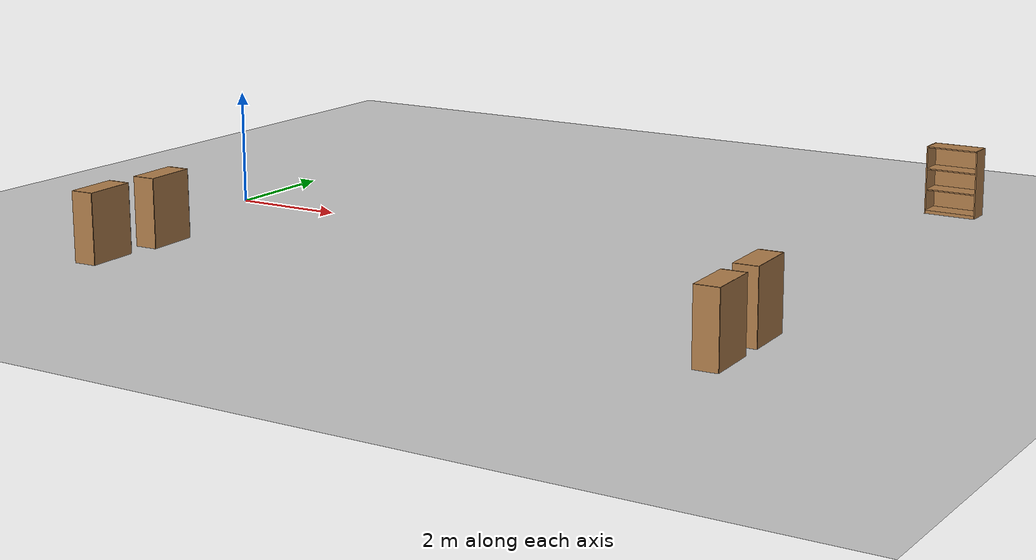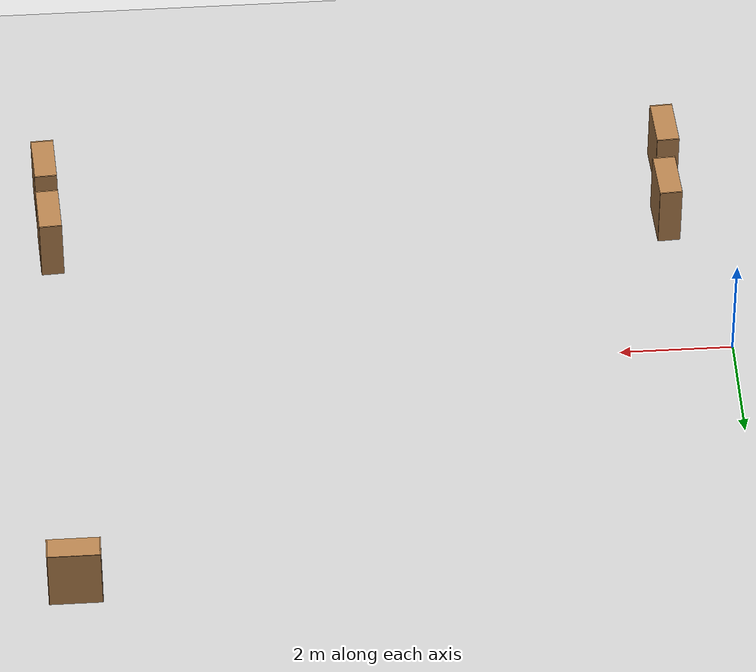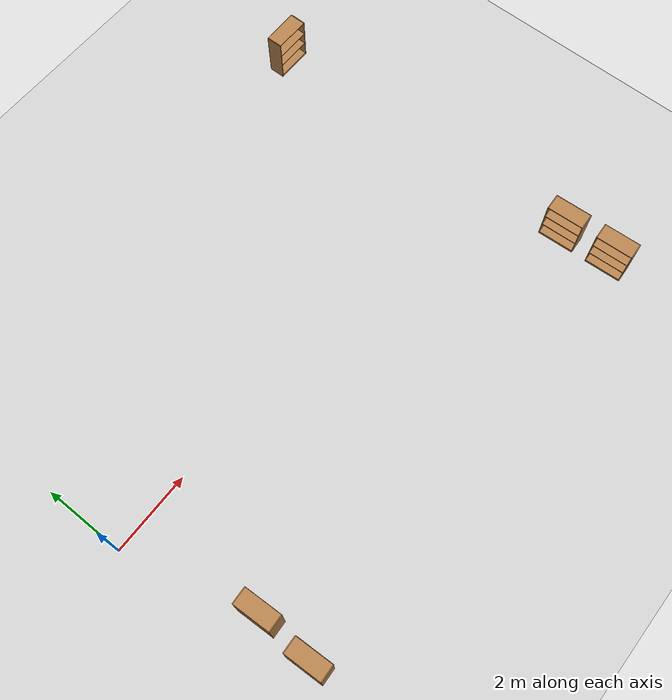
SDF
<sdf version="1.6">
 <world name="default">
  <model name="ground_plane">
   <static>1</static>
   <link name="link">
    <collision name="collision">
     <geometry><plane><normal>0 0 1</normal><size>100 100</size></plane></geometry>
     <surface><friction><ode><mu>100</mu><mu2>50</mu2></ode></friction></surface>
    </collision>
    <visual name="visual">
     <cast_shadows>0</cast_shadows>
     <geometry><plane><normal>0 0 1</normal><size>100 100</size></plane></geometry>
     <material>
      <script><uri>file://media/materials/scripts/gazebo.material</uri><name>Gazebo/Grey</name></script>
     </material>
    </visual>
   </link>
  </model>
  <model name="bookshelf">
   <static>1</static>
   <link name="link">
    <inertial><mass>1</mass></inertial>
    <collision name="back">
     <pose>0 0.005 0.6 0 -0 0</pose>
     <geometry><box><size>0.9 0.01 1.2</size></box></geometry>
    </collision>
    <visual name="visual1">
     <pose>0 0.005 0.6 0 -0 0</pose>
     <geometry><box><size>0.9 0.01 1.2</size></box></geometry>
     <material>
      <script><uri>file://media/materials/scripts/gazebo.material</uri><name>Gazebo/Wood</name></script>
     </material>
    </visual>
    <collision name="left_side">
     <pose>0.45 -0.195 0.6 0 -0 0</pose>
     <geometry><box><size>0.02 0.4 1.2</size></box></geometry>
    </collision>
    <visual name="visual2">
     <pose>0.45 -0.195 0.6 0 -0 0</pose>
     <geometry><box><size>0.02 0.4 1.2</size></box></geometry>
     <material>
      <script><uri>file://media/materials/scripts/gazebo.material</uri><name>Gazebo/Wood</name></script>
     </material>
    </visual>
    <collision name="right_side">
     <pose>-0.45 -0.195 0.6 0 -0 0</pose>
     <geometry><box><size>0.02 0.4 1.2</size></box></geometry>
    </collision>
    <visual name="visual3">
     <pose>-0.45 -0.195 0.6 0 -0 0</pose>
     <geometry><box><size>0.02 0.4 1.2</size></box></geometry>
     <material>
      <script><uri>file://media/materials/scripts/gazebo.material</uri><name>Gazebo/Wood</name></script>
     </material>
    </visual>
    <collision name="bottom">
     <pose>0 -0.195 0.03 0 -0 0</pose>
     <geometry><box><size>0.88 0.4 0.06</size></box></geometry>
    </collision>
    <visual name="visual4">
     <pose>0 -0.195 0.03 0 -0 0</pose>
     <geometry><box><size>0.88 0.4 0.06</size></box></geometry>
     <material>
      <script><uri>file://media/materials/scripts/gazebo.material</uri><name>Gazebo/Wood</name></script>
     </material>
    </visual>
    <collision name="top">
     <pose>0 -0.195 1.19 0 -0 0</pose>
     <geometry><box><size>0.88 0.4 0.02</size></box></geometry>
    </collision>
    <visual name="visual5">
     <pose>0 -0.195 1.19 0 -0 0</pose>
     <geometry><box><size>0.88 0.4 0.02</size></box></geometry>
     <material>
      <script><uri>file://media/materials/scripts/gazebo.material</uri><name>Gazebo/Wood</name></script>
     </material>
    </visual>
    <collision name="low_shelf">
     <pose>0 -0.195 0.43 0 -0 0</pose>
     <geometry><box><size>0.88 0.4 0.02</size></box></geometry>
    </collision>
    <visual name="visual6">
     <pose>0 -0.195 0.43 0 -0 0</pose>
     <geometry><box><size>0.88 0.4 0.02</size></box></geometry>
     <material>
      <script><uri>file://media/materials/scripts/gazebo.material</uri><name>Gazebo/Wood</name></script>
     </material>
    </visual>
    <collision name="high_shelf">
     <pose>0 -0.195 0.8 0 -0 0</pose>
     <geometry><box><size>0.88 0.4 0.02</size></box></geometry>
    </collision>
    <visual name="visual7">
     <pose>0 -0.195 0.8 0 -0 0</pose>
     <geometry><box><size>0.88 0.4 0.02</size></box></geometry>
     <material>
      <script><uri>file://media/materials/scripts/gazebo.material</uri><name>Gazebo/Wood</name></script>
     </material>
    </visual>
   </link>
   <pose>0.980106 -4.53001 0 0 0 -1.52246</pose>
  </model>
  <model name="bookshelf_clone">
   <static>1</static>
   <link name="link">
    <inertial><mass>1</mass></inertial>
    <collision name="back">
     <pose>0 0.005 0.6 0 -0 0</pose>
     <geometry><box><size>0.9 0.01 1.2</size></box></geometry>
    </collision>
    <visual name="visual1">
     <pose>0 0.005 0.6 0 -0 0</pose>
     <geometry><box><size>0.9 0.01 1.2</size></box></geometry>
     <material>
      <script><uri>file://media/materials/scripts/gazebo.material</uri><name>Gazebo/Wood</name></script>
     </material>
    </visual>
    <collision name="left_side">
     <pose>0.45 -0.195 0.6 0 -0 0</pose>
     <geometry><box><size>0.02 0.4 1.2</size></box></geometry>
    </collision>
    <visual name="visual2">
     <pose>0.45 -0.195 0.6 0 -0 0</pose>
     <geometry><box><size>0.02 0.4 1.2</size></box></geometry>
     <material>
      <script><uri>file://media/materials/scripts/gazebo.material</uri><name>Gazebo/Wood</name></script>
     </material>
    </visual>
    <collision name="right_side">
     <pose>-0.45 -0.195 0.6 0 -0 0</pose>
     <geometry><box><size>0.02 0.4 1.2</size></box></geometry>
    </collision>
    <visual name="visual3">
     <pose>-0.45 -0.195 0.6 0 -0 0</pose>
     <geometry><box><size>0.02 0.4 1.2</size></box></geometry>
     <material>
      <script><uri>file://media/materials/scripts/gazebo.material</uri><name>Gazebo/Wood</name></script>
     </material>
    </visual>
    <collision name="bottom">
     <pose>0 -0.195 0.03 0 -0 0</pose>
     <geometry><box><size>0.88 0.4 0.06</size></box></geometry>
    </collision>
    <visual name="visual4">
     <pose>0 -0.195 0.03 0 -0 0</pose>
     <geometry><box><size>0.88 0.4 0.06</size></box></geometry>
     <material>
      <script><uri>file://media/materials/scripts/gazebo.material</uri><name>Gazebo/Wood</name></script>
     </material>
    </visual>
    <collision name="top">
     <pose>0 -0.195 1.19 0 -0 0</pose>
     <geometry><box><size>0.88 0.4 0.02</size></box></geometry>
    </collision>
    <visual name="visual5">
     <pose>0 -0.195 1.19 0 -0 0</pose>
     <geometry><box><size>0.88 0.4 0.02</size></box></geometry>
     <material>
      <script><uri>file://media/materials/scripts/gazebo.material</uri><name>Gazebo/Wood</name></script>
     </material>
    </visual>
    <collision name="low_shelf">
     <pose>0 -0.195 0.43 0 -0 0</pose>
     <geometry><box><size>0.88 0.4 0.02</size></box></geometry>
    </collision>
    <visual name="visual6">
     <pose>0 -0.195 0.43 0 -0 0</pose>
     <geometry><box><size>0.88 0.4 0.02</size></box></geometry>
     <material>
      <script><uri>file://media/materials/scripts/gazebo.material</uri><name>Gazebo/Wood</name></script>
     </material>
    </visual>
    <collision name="high_shelf">
     <pose>0 -0.195 0.8 0 -0 0</pose>
     <geometry><box><size>0.88 0.4 0.02</size></box></geometry>
    </collision>
    <visual name="visual7">
     <pose>0 -0.195 0.8 0 -0 0</pose>
     <geometry><box><size>0.88 0.4 0.02</size></box></geometry>
     <material>
      <script><uri>file://media/materials/scripts/gazebo.material</uri><name>Gazebo/Wood</name></script>
     </material>
    </visual>
   </link>
   <pose>1.06301 -3.18048 0 0 0 -1.52246</pose>
  </model>
  <model name="bookshelf_clone_0">
   <static>1</static>
   <link name="link">
    <inertial><mass>1</mass></inertial>
    <collision name="back">
     <pose>0 0.005 0.6 0 -0 0</pose>
     <geometry><box><size>0.9 0.01 1.2</size></box></geometry>
    </collision>
    <visual name="visual1">
     <pose>0 0.005 0.6 0 -0 0</pose>
     <geometry><box><size>0.9 0.01 1.2</size></box></geometry>
     <material>
      <script><uri>file://media/materials/scripts/gazebo.material</uri><name>Gazebo/Wood</name></script>
     </material>
    </visual>
    <collision name="left_side">
     <pose>0.45 -0.195 0.6 0 -0 0</pose>
     <geometry><box><size>0.02 0.4 1.2</size></box></geometry>
    </collision>
    <visual name="visual2">
     <pose>0.45 -0.195 0.6 0 -0 0</pose>
     <geometry><box><size>0.02 0.4 1.2</size></box></geometry>
     <material>
      <script><uri>file://media/materials/scripts/gazebo.material</uri><name>Gazebo/Wood</name></script>
     </material>
    </visual>
    <collision name="right_side">
     <pose>-0.45 -0.195 0.6 0 -0 0</pose>
     <geometry><box><size>0.02 0.4 1.2</size></box></geometry>
    </collision>
    <visual name="visual3">
     <pose>-0.45 -0.195 0.6 0 -0 0</pose>
     <geometry><box><size>0.02 0.4 1.2</size></box></geometry>
     <material>
      <script><uri>file://media/materials/scripts/gazebo.material</uri><name>Gazebo/Wood</name></script>
     </material>
    </visual>
    <collision name="bottom">
     <pose>0 -0.195 0.03 0 -0 0</pose>
     <geometry><box><size>0.88 0.4 0.06</size></box></geometry>
    </collision>
    <visual name="visual4">
     <pose>0 -0.195 0.03 0 -0 0</pose>
     <geometry><box><size>0.88 0.4 0.06</size></box></geometry>
     <material>
      <script><uri>file://media/materials/scripts/gazebo.material</uri><name>Gazebo/Wood</name></script>
     </material>
    </visual>
    <collision name="top">
     <pose>0 -0.195 1.19 0 -0 0</pose>
     <geometry><box><size>0.88 0.4 0.02</size></box></geometry>
    </collision>
    <visual name="visual5">
     <pose>0 -0.195 1.19 0 -0 0</pose>
     <geometry><box><size>0.88 0.4 0.02</size></box></geometry>
     <material>
      <script><uri>file://media/materials/scripts/gazebo.material</uri><name>Gazebo/Wood</name></script>
     </material>
    </visual>
    <collision name="low_shelf">
     <pose>0 -0.195 0.43 0 -0 0</pose>
     <geometry><box><size>0.88 0.4 0.02</size></box></geometry>
    </collision>
    <visual name="visual6">
     <pose>0 -0.195 0.43 0 -0 0</pose>
     <geometry><box><size>0.88 0.4 0.02</size></box></geometry>
     <material>
      <script><uri>file://media/materials/scripts/gazebo.material</uri><name>Gazebo/Wood</name></script>
     </material>
    </visual>
    <collision name="high_shelf">
     <pose>0 -0.195 0.8 0 -0 0</pose>
     <geometry><box><size>0.88 0.4 0.02</size></box></geometry>
    </collision>
    <visual name="visual7">
     <pose>0 -0.195 0.8 0 -0 0</pose>
     <geometry><box><size>0.88 0.4 0.02</size></box></geometry>
     <material>
      <script><uri>file://media/materials/scripts/gazebo.material</uri><name>Gazebo/Wood</name></script>
     </material>
    </visual>
   </link>
   <pose>12.1841 -4.34916 0 0 0 -1.52246</pose>
  </model>
  <model name="bookshelf_clone_1">
   <static>1</static>
   <link name="link">
    <inertial><mass>1</mass></inertial>
    <collision name="back">
     <pose>0 0.005 0.6 0 -0 0</pose>
     <geometry><box><size>0.9 0.01 1.2</size></box></geometry>
    </collision>
    <visual name="visual1">
     <pose>0 0.005 0.6 0 -0 0</pose>
     <geometry><box><size>0.9 0.01 1.2</size></box></geometry>
     <material>
      <script><uri>file://media/materials/scripts/gazebo.material</uri><name>Gazebo/Wood</name></script>
     </material>
    </visual>
    <collision name="left_side">
     <pose>0.45 -0.195 0.6 0 -0 0</pose>
     <geometry><box><size>0.02 0.4 1.2</size></box></geometry>
    </collision>
    <visual name="visual2">
     <pose>0.45 -0.195 0.6 0 -0 0</pose>
     <geometry><box><size>0.02 0.4 1.2</size></box></geometry>
     <material>
      <script><uri>file://media/materials/scripts/gazebo.material</uri><name>Gazebo/Wood</name></script>
     </material>
    </visual>
    <collision name="right_side">
     <pose>-0.45 -0.195 0.6 0 -0 0</pose>
     <geometry><box><size>0.02 0.4 1.2</size></box></geometry>
    </collision>
    <visual name="visual3">
     <pose>-0.45 -0.195 0.6 0 -0 0</pose>
     <geometry><box><size>0.02 0.4 1.2</size></box></geometry>
     <material>
      <script><uri>file://media/materials/scripts/gazebo.material</uri><name>Gazebo/Wood</name></script>
     </material>
    </visual>
    <collision name="bottom">
     <pose>0 -0.195 0.03 0 -0 0</pose>
     <geometry><box><size>0.88 0.4 0.06</size></box></geometry>
    </collision>
    <visual name="visual4">
     <pose>0 -0.195 0.03 0 -0 0</pose>
     <geometry><box><size>0.88 0.4 0.06</size></box></geometry>
     <material>
      <script><uri>file://media/materials/scripts/gazebo.material</uri><name>Gazebo/Wood</name></script>
     </material>
    </visual>
    <collision name="top">
     <pose>0 -0.195 1.19 0 -0 0</pose>
     <geometry><box><size>0.88 0.4 0.02</size></box></geometry>
    </collision>
    <visual name="visual5">
     <pose>0 -0.195 1.19 0 -0 0</pose>
     <geometry><box><size>0.88 0.4 0.02</size></box></geometry>
     <material>
      <script><uri>file://media/materials/scripts/gazebo.material</uri><name>Gazebo/Wood</name></script>
     </material>
    </visual>
    <collision name="low_shelf">
     <pose>0 -0.195 0.43 0 -0 0</pose>
     <geometry><box><size>0.88 0.4 0.02</size></box></geometry>
    </collision>
    <visual name="visual6">
     <pose>0 -0.195 0.43 0 -0 0</pose>
     <geometry><box><size>0.88 0.4 0.02</size></box></geometry>
     <material>
      <script><uri>file://media/materials/scripts/gazebo.material</uri><name>Gazebo/Wood</name></script>
     </material>
    </visual>
    <collision name="high_shelf">
     <pose>0 -0.195 0.8 0 -0 0</pose>
     <geometry><box><size>0.88 0.4 0.02</size></box></geometry>
    </collision>
    <visual name="visual7">
     <pose>0 -0.195 0.8 0 -0 0</pose>
     <geometry><box><size>0.88 0.4 0.02</size></box></geometry>
     <material>
      <script><uri>file://media/materials/scripts/gazebo.material</uri><name>Gazebo/Wood</name></script>
     </material>
    </visual>
   </link>
   <pose>12.1324 -3.07267 0 0 0 -1.52246</pose>
  </model>
  <model name="bookshelf_0">
   <static>1</static>
   <link name="link">
    <inertial><mass>1</mass></inertial>
    <collision name="back">
     <pose>0 0.005 0.6 0 -0 0</pose>
     <geometry><box><size>0.9 0.01 1.2</size></box></geometry>
    </collision>
    <visual name="visual1">
     <pose>0 0.005 0.6 0 -0 0</pose>
     <geometry><box><size>0.9 0.01 1.2</size></box></geometry>
     <material>
      <script><uri>file://media/materials/scripts/gazebo.material</uri><name>Gazebo/Wood</name></script>
     </material>
    </visual>
    <collision name="left_side">
     <pose>0.45 -0.195 0.6 0 -0 0</pose>
     <geometry><box><size>0.02 0.4 1.2</size></box></geometry>
    </collision>
    <visual name="visual2">
     <pose>0.45 -0.195 0.6 0 -0 0</pose>
     <geometry><box><size>0.02 0.4 1.2</size></box></geometry>
     <material>
      <script><uri>file://media/materials/scripts/gazebo.material</uri><name>Gazebo/Wood</name></script>
     </material>
    </visual>
    <collision name="right_side">
     <pose>-0.45 -0.195 0.6 0 -0 0</pose>
     <geometry><box><size>0.02 0.4 1.2</size></box></geometry>
    </collision>
    <visual name="visual3">
     <pose>-0.45 -0.195 0.6 0 -0 0</pose>
     <geometry><box><size>0.02 0.4 1.2</size></box></geometry>
     <material>
      <script><uri>file://media/materials/scripts/gazebo.material</uri><name>Gazebo/Wood</name></script>
     </material>
    </visual>
    <collision name="bottom">
     <pose>0 -0.195 0.03 0 -0 0</pose>
     <geometry><box><size>0.88 0.4 0.06</size></box></geometry>
    </collision>
    <visual name="visual4">
     <pose>0 -0.195 0.03 0 -0 0</pose>
     <geometry><box><size>0.88 0.4 0.06</size></box></geometry>
     <material>
      <script><uri>file://media/materials/scripts/gazebo.material</uri><name>Gazebo/Wood</name></script>
     </material>
    </visual>
    <collision name="top">
     <pose>0 -0.195 1.19 0 -0 0</pose>
     <geometry><box><size>0.88 0.4 0.02</size></box></geometry>
    </collision>
    <visual name="visual5">
     <pose>0 -0.195 1.19 0 -0 0</pose>
     <geometry><box><size>0.88 0.4 0.02</size></box></geometry>
     <material>
      <script><uri>file://media/materials/scripts/gazebo.material</uri><name>Gazebo/Wood</name></script>
     </material>
    </visual>
    <collision name="low_shelf">
     <pose>0 -0.195 0.43 0 -0 0</pose>
     <geometry><box><size>0.88 0.4 0.02</size></box></geometry>
    </collision>
    <visual name="visual6">
     <pose>0 -0.195 0.43 0 -0 0</pose>
     <geometry><box><size>0.88 0.4 0.02</size></box></geometry>
     <material>
      <script><uri>file://media/materials/scripts/gazebo.material</uri><name>Gazebo/Wood</name></script>
     </material>
    </visual>
    <collision name="high_shelf">
     <pose>0 -0.195 0.8 0 -0 0</pose>
     <geometry><box><size>0.88 0.4 0.02</size></box></geometry>
    </collision>
    <visual name="visual7">
     <pose>0 -0.195 0.8 0 -0 0</pose>
     <geometry><box><size>0.88 0.4 0.02</size></box></geometry>
     <material>
      <script><uri>file://media/materials/scripts/gazebo.material</uri><name>Gazebo/Wood</name></script>
     </material>
    </visual>
   </link>
   <pose>11.743 5.3484 0.15823 0 -0 0</pose>
  </model>
 </world>
</sdf>
